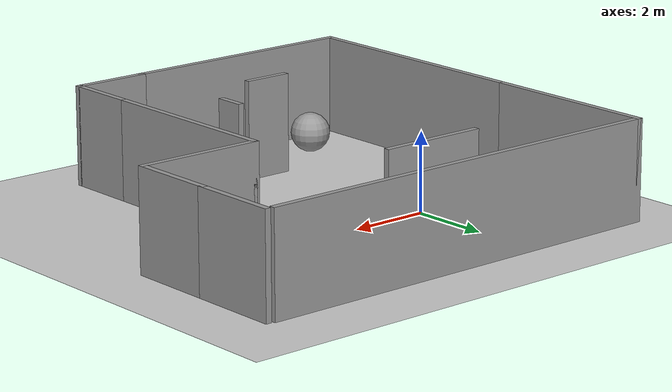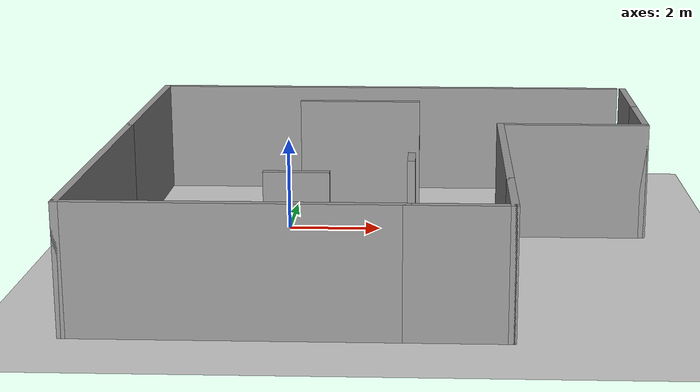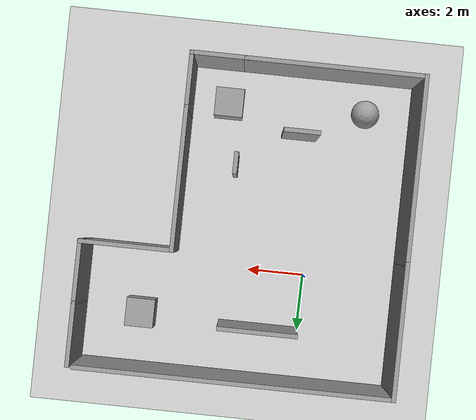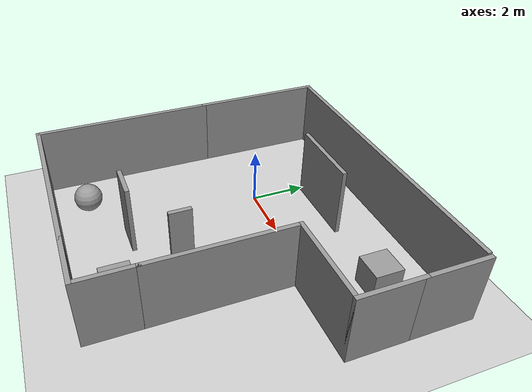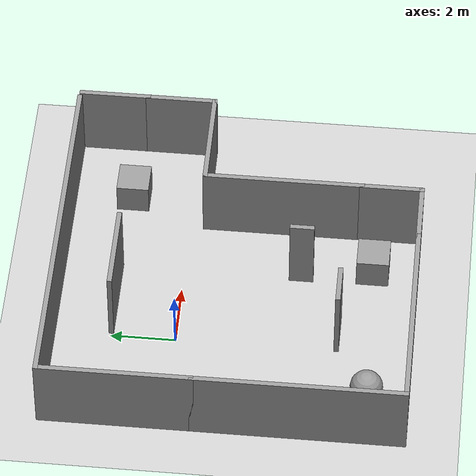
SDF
<sdf version="1.7">
 <world name="default">
  <light name="sun" type="directional">
   <pose>0 0 10 0 -0 0</pose>
   <diffuse>0.8 0.8 0.8 1</diffuse>
   <specular>0.2 0.2 0.2 1</specular>
   <attenuation>
    <range>1000</range>
    <constant>0.9</constant>
    <linear>0.01</linear>
    <quadratic>0.001</quadratic>
   </attenuation>
   <direction>-0.5 0.1 -0.9</direction>
   <spot><inner_angle>0</inner_angle><outer_angle>0</outer_angle><falloff>0</falloff></spot>
  </light>
  <model name="ground_plane">
   <static>1</static>
   <link name="link">
    <collision name="collision">
     <geometry><plane><normal>0 0 1</normal><size>100 100</size></plane></geometry>
     <surface><friction><ode><mu>100</mu><mu2>50</mu2></ode></friction></surface>
    </collision>
    <visual name="visual">
     <cast_shadows>0</cast_shadows>
     <geometry><plane><normal>0 0 1</normal><size>100 100</size></plane></geometry>
     <material>
      <script><uri>file://media/materials/scripts/gazebo.material</uri><name>Gazebo/Grey</name></script>
     </material>
    </visual>
   </link>
  </model>
  <gravity>0 0 -9.8</gravity>
  <magnetic_field>6e-06 2.3e-05 -4.2e-05</magnetic_field>
  <atmosphere type="adiabatic"/>
  <physics type="ode">
   <max_step_size>0.001</max_step_size>
   <real_time_factor>1</real_time_factor>
   <real_time_update_rate>1000</real_time_update_rate>
  </physics>
  <scene><ambient>0.4 0.4 0.4 1</ambient><background>0.7 0.7 0.7 1</background><shadows>1</shadows></scene>
  <audio><device>default</device></audio>
  <spherical_coordinates>
   <surface_model>EARTH_WGS84</surface_model>
   <latitude_deg>0</latitude_deg>
   <longitude_deg>0</longitude_deg>
   <elevation>0</elevation>
   <heading_deg>0</heading_deg>
  </spherical_coordinates>
  <model name="Untitled">
   <pose>2.19247 -1.70927 0 0 -0 0</pose>
   <link name="Wall_14">
    <collision name="Wall_14_Collision">
     <geometry><box><size>2.25 0.15 2.5</size></box></geometry>
     <pose>0 0 1.25 0 -0 0</pose>
    </collision>
    <visual name="Wall_14_Visual">
     <pose>0 0 1.25 0 -0 0</pose>
     <geometry><box><size>2.25 0.15 2.5</size></box></geometry>
     <material>
      <script><uri>file://media/materials/scripts/gazebo.material</uri><name>Gazebo/Grey</name></script>
      <ambient>1 1 1 1</ambient>
     </material>
     <meta><layer>0</layer></meta>
    </visual>
    <pose>5.525 4.375 0 0 -0 1.5708</pose>
   </link>
   <link name="Wall_17">
    <collision name="Wall_17_Collision">
     <geometry><box><size>4.75 0.15 2.5</size></box></geometry>
     <pose>0 0 1.25 0 -0 0</pose>
    </collision>
    <visual name="Wall_17_Visual">
     <pose>0 0 1.25 0 -0 0</pose>
     <geometry><box><size>4.75 0.15 2.5</size></box></geometry>
     <material>
      <script><uri>file://media/materials/scripts/gazebo.material</uri><name>Gazebo/Grey</name></script>
      <ambient>1 1 1 1</ambient>
     </material>
     <meta><layer>0</layer></meta>
    </visual>
    <pose>-5.525 3.175 0 0 -0 1.5708</pose>
   </link>
   <link name="Wall_18">
    <collision name="Wall_18_Collision">
     <geometry><box><size>11 0.15 2.5</size></box></geometry>
     <pose>0 0 1.25 0 -0 0</pose>
    </collision>
    <visual name="Wall_18_Visual">
     <pose>0 0 1.25 0 -0 0</pose>
     <geometry><box><size>11 0.15 2.5</size></box></geometry>
     <material>
      <script><uri>file://media/materials/scripts/gazebo.material</uri><name>Gazebo/Grey</name></script>
      <ambient>1 1 1 1</ambient>
     </material>
     <meta><layer>0</layer></meta>
    </visual>
    <pose>-0.1 5.475 0 0 -0 0</pose>
   </link>
   <link name="Wall_20">
    <collision name="Wall_20_Collision">
     <geometry><box><size>2.75 0.15 2.5</size></box></geometry>
     <pose>0 0 1.25 0 -0 0</pose>
    </collision>
    <visual name="Wall_20_Visual">
     <pose>0 0 1.25 0 -0 0</pose>
     <geometry><box><size>2.75 0.15 2.5</size></box></geometry>
     <material>
      <script><uri>file://media/materials/scripts/gazebo.material</uri><name>Gazebo/Grey</name></script>
      <ambient>1 1 1 1</ambient>
     </material>
     <meta><layer>0</layer></meta>
    </visual>
    <pose>-0.719939 3.68292 0 0 -0 0</pose>
   </link>
   <link name="Wall_24">
    <collision name="Wall_24_Collision">
     <geometry><box><size>0.75 0.15 2.5</size></box></geometry>
     <pose>0 0 1.25 0 -0 0</pose>
    </collision>
    <visual name="Wall_24_Visual">
     <pose>0 0 1.25 0 -0 0</pose>
     <geometry><box><size>0.75 0.15 2.5</size></box></geometry>
     <material>
      <script><uri>file://media/materials/scripts/gazebo.material</uri><name>Gazebo/Grey</name></script>
      <ambient>1 1 1 1</ambient>
     </material>
     <meta><layer>0</layer></meta>
    </visual>
    <pose>0.583289 -1.92907 0 0 -0 -1.5708</pose>
   </link>
   <link name="Wall_26">
    <collision name="Wall_26_Collision">
     <geometry><box><size>2 0.15 2.5</size></box></geometry>
     <pose>0 0 1.25 0 -0 0</pose>
    </collision>
    <visual name="Wall_26_Visual">
     <pose>0 0 1.25 0 -0 0</pose>
     <geometry><box><size>2 0.15 2.5</size></box></geometry>
     <material>
      <script><uri>file://media/materials/scripts/gazebo.material</uri><name>Gazebo/Grey</name></script>
      <ambient>1 1 1 1</ambient>
     </material>
     <meta><layer>0</layer></meta>
    </visual>
    <pose>1.5 -5.475 0 0 -0 0</pose>
   </link>
   <link name="Wall_27">
    <collision name="Wall_27_Collision">
     <geometry><box><size>2 0.15 2.5</size></box></geometry>
     <pose>0 0 1.25 0 -0 0</pose>
    </collision>
    <visual name="Wall_27_Visual">
     <pose>0 0 1.25 0 -0 0</pose>
     <geometry><box><size>2 0.15 2.5</size></box></geometry>
     <material>
      <script><uri>file://media/materials/scripts/gazebo.material</uri><name>Gazebo/Grey</name></script>
      <ambient>1 1 1 1</ambient>
     </material>
     <meta><layer>0</layer></meta>
    </visual>
    <pose>2.425 -4.55 0 0 -0 1.5708</pose>
   </link>
   <link name="Wall_3">
    <collision name="Wall_3_Collision">
     <geometry><box><size>6.5 0.15 2.5</size></box></geometry>
     <pose>0 0 1.25 0 -0 0</pose>
    </collision>
    <visual name="Wall_3_Visual">
     <pose>0 0 1.25 0 -0 0</pose>
     <geometry><box><size>6.5 0.15 2.5</size></box></geometry>
     <material>
      <script><uri>file://media/materials/scripts/gazebo.material</uri><name>Gazebo/Grey</name></script>
      <ambient>1 1 1 1</ambient>
     </material>
     <meta><layer>0</layer></meta>
    </visual>
    <pose>-5.525 -2.3 0 0 -0 -1.5708</pose>
   </link>
   <link name="Wall_30">
    <collision name="Wall_30_Collision">
     <geometry><box><size>1.25 0.15 2.5</size></box></geometry>
     <pose>0 0 1.25 0 -0 0</pose>
    </collision>
    <visual name="Wall_30_Visual">
     <pose>0 0 1.25 0 -0 0</pose>
     <geometry><box><size>1.25 0.15 2.5</size></box></geometry>
     <material>
      <script><uri>file://media/materials/scripts/gazebo.material</uri><name>Gazebo/Grey</name></script>
      <ambient>1 1 1 1</ambient>
     </material>
     <meta><layer>0</layer></meta>
    </visual>
    <pose>-1.54446 -3.21385 0 0 -0 0</pose>
   </link>
   <link name="Wall_4">
    <collision name="Wall_4_Collision">
     <geometry><box><size>6.25 0.15 2.5</size></box></geometry>
     <pose>0 0 1.25 0 -0 0</pose>
    </collision>
    <visual name="Wall_4_Visual">
     <pose>0 0 1.25 0 -0 0</pose>
     <geometry><box><size>6.25 0.15 2.5</size></box></geometry>
     <material>
      <script><uri>file://media/materials/scripts/gazebo.material</uri><name>Gazebo/Grey</name></script>
      <ambient>1 1 1 1</ambient>
     </material>
     <meta><layer>0</layer></meta>
    </visual>
    <pose>-2.475 -5.475 0 0 -0 0</pose>
   </link>
   <link name="Wall_7">
    <collision name="Wall_7_Collision">
     <geometry><box><size>5 0.15 2.5</size></box></geometry>
     <pose>0 0 1.25 0 -0 0</pose>
    </collision>
    <visual name="Wall_7_Visual">
     <pose>0 0 1.25 0 -0 0</pose>
     <geometry><box><size>5 0.15 2.5</size></box></geometry>
     <material>
      <script><uri>file://media/materials/scripts/gazebo.material</uri><name>Gazebo/Grey</name></script>
      <ambient>1 1 1 1</ambient>
     </material>
     <meta><layer>0</layer></meta>
    </visual>
    <pose>2.425 -1.2 0 0 -0 1.5708</pose>
   </link>
   <link name="Wall_8">
    <collision name="Wall_8_Collision">
     <geometry><box><size>3.25 0.15 2.5</size></box></geometry>
     <pose>0 0 1.25 0 -0 0</pose>
    </collision>
    <visual name="Wall_8_Visual">
     <pose>0 0 1.25 0 -0 0</pose>
     <geometry><box><size>3.25 0.15 2.5</size></box></geometry>
     <material>
      <script><uri>file://media/materials/scripts/gazebo.material</uri><name>Gazebo/Grey</name></script>
      <ambient>1 1 1 1</ambient>
     </material>
     <meta><layer>0</layer></meta>
    </visual>
    <pose>3.975 1.225 0 0 -0 0</pose>
   </link>
   <link name="Wall_9">
    <collision name="Wall_9_Collision">
     <geometry><box><size>2.25 0.15 2.5</size></box></geometry>
     <pose>0 0 1.25 0 -0 0</pose>
    </collision>
    <visual name="Wall_9_Visual">
     <pose>0 0 1.25 0 -0 0</pose>
     <geometry><box><size>2.25 0.15 2.5</size></box></geometry>
     <material>
      <script><uri>file://media/materials/scripts/gazebo.material</uri><name>Gazebo/Grey</name></script>
      <ambient>1 1 1 1</ambient>
     </material>
     <meta><layer>0</layer></meta>
    </visual>
    <pose>5.525 2.275 0 0 -0 1.5708</pose>
   </link>
   <static>1</static>
  </model>
  <model name="unit_box">
   <pose>5.61808 1.86453 0.499995 0 1e-05 0</pose>
   <link name="link">
    <inertial>
     <mass>1</mass>
     <inertia>
      <ixx>0.166667</ixx>
      <ixy>0</ixy>
      <ixz>0</ixz>
      <iyy>0.166667</iyy>
      <iyz>0</iyz>
      <izz>0.166667</izz>
     </inertia>
    </inertial>
    <collision name="collision"><geometry><box><size>1 1 1</size></box></geometry></collision>
    <visual name="visual">
     <geometry><box><size>1 1 1</size></box></geometry>
     <material>
      <script><name>Gazebo/Grey</name><uri>file://media/materials/scripts/gazebo.material</uri></script>
     </material>
    </visual>
   </link>
  </model>
  <model name="unit_sphere">
   <pose>-1.61282 -5.94618 0.5 0 -0 0</pose>
   <link name="link">
    <inertial>
     <mass>1</mass>
     <inertia><ixx>0.1</ixx><ixy>0</ixy><ixz>0</ixz><iyy>0.1</iyy><iyz>0</iyz><izz>0.1</izz></inertia>
    </inertial>
    <collision name="collision"><geometry><sphere><radius>0.5</radius></sphere></geometry></collision>
    <visual name="visual">
     <geometry><sphere><radius>0.5</radius></sphere></geometry>
     <material>
      <script><name>Gazebo/Grey</name><uri>file://media/materials/scripts/gazebo.material</uri></script>
     </material>
    </visual>
   </link>
  </model>
  <model name="unit_box_0">
   <pose>3.24325 -5.83631 0.5 0 -0 0</pose>
   <link name="link">
    <inertial>
     <mass>1</mass>
     <inertia>
      <ixx>0.166667</ixx>
      <ixy>0</ixy>
      <ixz>0</ixz>
      <iyy>0.166667</iyy>
      <iyz>0</iyz>
      <izz>0.166667</izz>
     </inertia>
    </inertial>
    <collision name="collision"><geometry><box><size>1 1 1</size></box></geometry></collision>
    <visual name="visual">
     <geometry><box><size>1 1 1</size></box></geometry>
     <material>
      <script><name>Gazebo/Grey</name><uri>file://media/materials/scripts/gazebo.material</uri></script>
     </material>
    </visual>
   </link>
  </model>
 </world>
</sdf>
